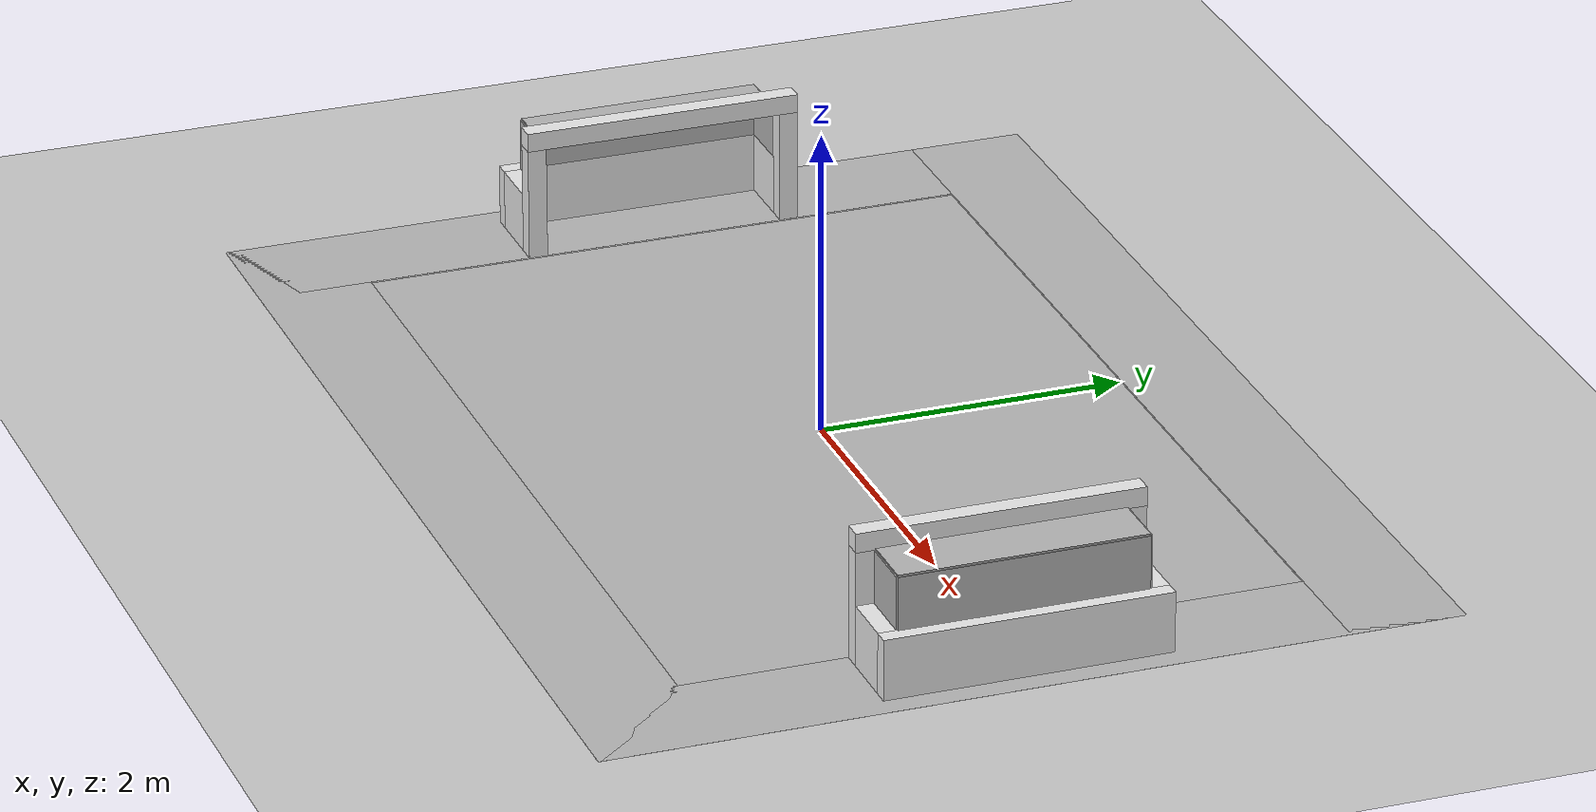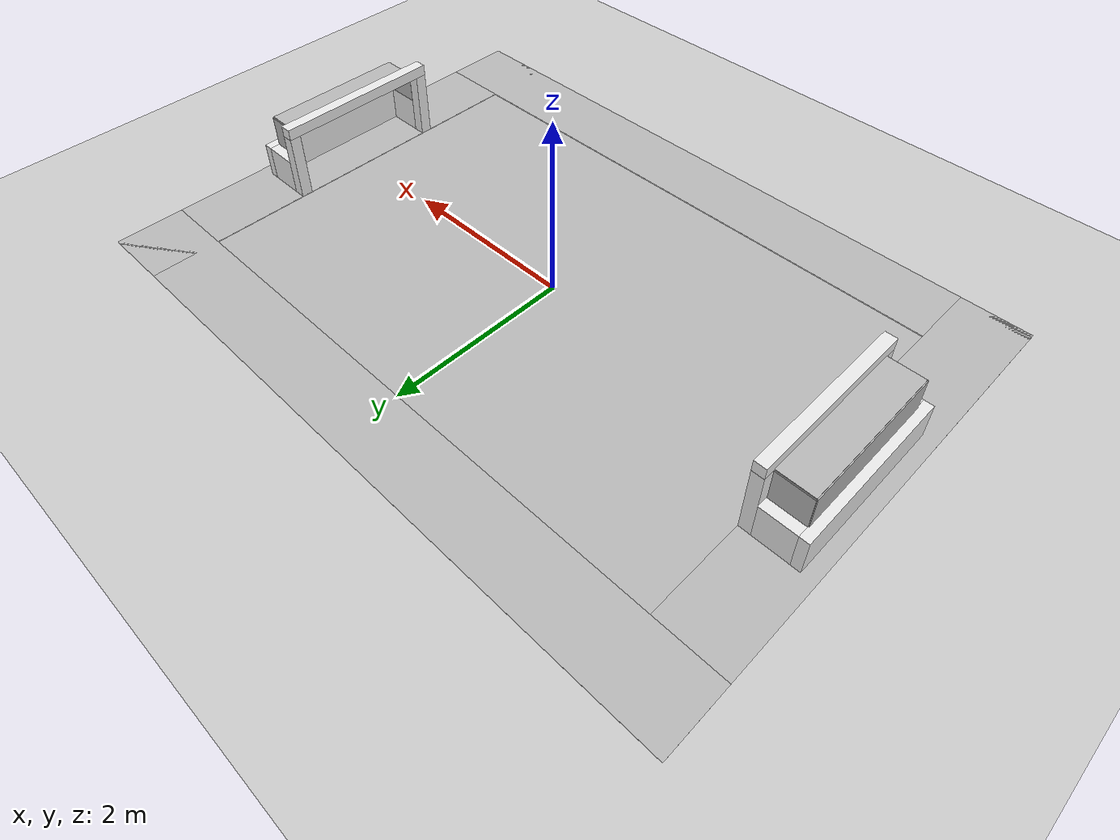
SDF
<?xml version="1.0" ?>
<sdf version='1.5'>
  <world name='RoboCup15MSL'>
<!-- scene -->
    <scene>
      <ambient>0.4 0.4 0.4 1</ambient>
      <background>0.7 0.7 0.7 1</background>
      <shadows>0</shadows>
    </scene>

<!-- spherical_coordinates -->
    <spherical_coordinates>
      <surface_model>EARTH_WGS84</surface_model>
      <latitude_deg>0</latitude_deg>
      <longitude_deg>0</longitude_deg>
      <elevation>0</elevation>
      <heading_deg>0</heading_deg>
    </spherical_coordinates>

<!-- lighting -->
 <light type="directional" name="sun">
    <cast_shadows>0</cast_shadows>

    <pose>0 0 10 0 0 0</pose>
    <diffuse>0.8 0.8 0.8 1</diffuse>
    <specular>0.2 0.2 0.2 1</specular>

    <attenuation>
      <range>1000</range>
      <constant>0.9</constant>
      <linear>0.01</linear>
      <quadratic>0.001</quadratic>
    </attenuation>

    <direction>-0.5 0.1 -0.9</direction>
  </light>

<!-- gui -->
    <gui fullscreen='0'>
      <camera name='user_camera'>
        <pose>0 -16 10 0 0.53 1.57</pose>
        <view_controller>orbit</view_controller>
      </camera>
    </gui>

<!-- physics -->
     <physics type='ode'>
      <max_step_size>0.015</max_step_size>
      <real_time_update_rate>67</real_time_update_rate>
      <gravity>0 0 -9.8</gravity>
    </physics>

<!-- The same as model://ground_plane -->
    <model name='ground_plane'>
      <static>true</static>
      <link name='link'>//
        <collision name='collision'>
          <geometry>
            <plane>
              <normal>0 0 1</normal>
              <size>100 100</size>
            </plane>
          </geometry>
          <surface>
            <friction>
              <ode>
                <mu>100</mu>
                <mu2>50</mu2>
              </ode>
            </friction>
            <contact>
              <ode/>
            </contact>
            <bounce/>
          </surface>
          <max_contacts>10</max_contacts>
        </collision>
        <visual name='visual'>
          <cast_shadows>0</cast_shadows>
          <geometry>
            <plane>
              <normal>0 0 1</normal>
              <size>100 100</size>
            </plane>
          </geometry>
          <material>
            <script>
              <uri>file://media/materials/scripts/gazebo.material</uri>
              <name>Gazebo/Grey</name>
            </script>
          </material>
        </visual>
        <velocity_decay>
          <linear>0</linear>
          <angular>0</angular>
        </velocity_decay>
        <self_collide>0</self_collide>
        <kinematic>0</kinematic>
        <gravity>1</gravity>
      </link>
    </model>

<!-- RoboCup 2015 MSL Field -->
    <include>
        <pose>0 0 0 0 0 0</pose>
        <uri>model://RoboCup15_MSL_Field</uri>
        <name>field</name>
        <static>true</static>
    </include>

<!-- RoboCup 2015 MSL Goal left -->
    <include>
        <pose>-3 0 0.01 0 0 -3.14 </pose>
        <uri>model://RoboCup15_MSL_Goal</uri>
        <name>left_goal</name>
        <static>true</static>
    </include>

<!-- RoboCup 2015 MSL Goal right -->
   <include>
        <pose>3 0 0.01 0 0 0 </pose>
        <uri>model://RoboCup15_MSL_Goal</uri>
        <name>right_goal</name>
        <static>true</static>
    </include>
  </world>
</sdf>

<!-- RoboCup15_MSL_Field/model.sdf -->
<sdf version="1.4">
  <model name="RoboCup15_MSL_Field">
    <static>true</static>

    <link name="chassis">
      <pose>0 0 0.01 0 0 0</pose>
      <collision name="collision">
        <geometry>
          <plane>
            <normal>0 0 1</normal>
            <size>6 4</size>
          </plane>
        </geometry>
        <surface>
          <friction>
            <ode>
              <mu>100</mu>
              <mu2>50</mu2>
            </ode>
          </friction>
        </surface>
      </collision>

      <visual name="carpet">
        <cast_shadows>false</cast_shadows>
        <geometry>
          <plane>
            <normal>0 0 1</normal>
            <size>6 4</size>
          </plane>
        </geometry>
        <material>
          <script>
            <uri>file://materials/scripts/</uri>
            <uri>file://materials/textures/</uri>
            <name>RoboCup/Carpet</name>
          </script>
        </material>
      </visual>

       <visual name="base1">
        <pose>0 2.375 0.01 0 0 0</pose>
        <cast_shadows>false</cast_shadows>
        <geometry>
          <plane>
            <normal>0 0 1</normal>
            <size>7.5 0.75</size>
          </plane>
        </geometry>
        <material>
          <script>
            <uri>file://materials/scripts/</uri>
            <uri>file://materials/textures/</uri>
            <name>RoboCup/FieldBorder</name>
          </script>
        </material>
      </visual>
      <visual name="base2">
        <pose>0 -2.375 0.01 0 0 0</pose>
        <cast_shadows>false</cast_shadows>
        <geometry>
          <plane>
            <normal>0 0 1</normal>
            <size>7.5 0.75</size>
          </plane>
        </geometry>
        <material>
          <script>
            <uri>file://materials/scripts/</uri>
            <uri>file://materials/textures/</uri>
            <name>RoboCup/FieldBorder</name>
          </script>
        </material>
      </visual>
      <visual name="base3">
        <pose>3.375 0 0.01 0 0 0</pose>
        <cast_shadows>false</cast_shadows>
        <geometry>
          <plane>
            <normal>0 0 1</normal>
            <size>0.75 5.5</size>
          </plane>
        </geometry>
        <material>
          <script>
            <uri>file://materials/scripts/</uri>
            <uri>file://materials/textures/</uri>
            <name>RoboCup/FieldBorder</name>
          </script>
        </material>
      </visual>
      <visual name="base4">
        <pose>-3.375 0 0.01 0 0 0</pose>
        <cast_shadows>false</cast_shadows>
        <geometry>
          <plane>
            <normal>0 0 1</normal>
            <size>0.75 5.5</size>
          </plane>
        </geometry>
        <material>
          <script>
            <uri>file://materials/scripts/</uri>
            <uri>file://materials/textures/</uri>
            <name>RoboCup/FieldBorder</name>
          </script>
        </material>
      </visual>
    </link>

  </model>
</sdf>

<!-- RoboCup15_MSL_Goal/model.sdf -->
<sdf version="1.4">
  <model name="RoboCup15_MSL_Goal">
    <static>true</static>

    <link name="left_post">
      <pose>0.0625 0.8625 0.385 0 0 0</pose>
      <collision name="collision">
        <geometry>
          <box><size>0.125 0.125 0.75</size></box>
        </geometry>
      </collision>
      <visual name="visual">
        <geometry>
          <box><size>0.125 0.125 0.75</size></box>
        </geometry>
        <material>
          <script>
            <uri>file://media/materials/scripts/gazebo.material</uri>
            <name>Gazebo/White</name>
          </script>
        </material>
      </visual>
    </link>

    <link name="right_post">
      <pose>0.0625 -0.8625 0.385 0 0 0</pose>
      <collision name="collision">
        <geometry>
          <box><size>0.125 0.125 0.75</size></box>
        </geometry>
      </collision>
      <visual name="visual">
        <geometry>
          <box><size>0.125 0.125 0.75</size></box>
        </geometry>
        <material>
          <script>
            <uri>file://media/materials/scripts/gazebo.material</uri>
            <name>Gazebo/White</name>
          </script>
        </material>
      </visual>
    </link>

    <link name="crossbar">
      <pose>0.0625 0 0.8225 0 0 0</pose>
      <collision name="collision">
        <geometry>
          <box><size>0.125 1.85 0.125</size></box>
        </geometry>
      </collision>
      <visual name="visual">
        <geometry>
          <box><size>0.125 1.85 0.125</size></box>
        </geometry>
        <material>
          <script>
            <uri>file://media/materials/scripts/gazebo.material</uri>
            <name>Gazebo/White</name>
          </script>
        </material>
      </visual>
    </link>

    <link name="left_support_horiz_lower">
      <pose>0.3125 0.8625 0.21 0 0 0</pose>
      <collision name="collision">
        <geometry>
          <box><size>0.375 0.125 0.4</size></box>
        </geometry>
      </collision>
      <visual name="visual">
        <geometry>
          <box><size>0.375 0.125 0.4</size></box>
        </geometry>
        <material>
          <script>
            <uri>file://media/materials/scripts/gazebo.material</uri>
            <name>Gazebo/White</name>
          </script>
        </material>
      </visual>
    </link>

    <link name="right_support_horiz_lower">
      <pose>0.3125 -0.8625 0.21 0 0 0</pose>
      <collision name="collision">
        <geometry>
          <box><size>0.375 0.125 0.4</size></box>
        </geometry>
      </collision>
      <visual name="visual">
        <geometry>
          <box><size>0.375 0.125 0.4</size></box>
        </geometry>
        <material>
          <script>
            <uri>file://media/materials/scripts/gazebo.material</uri>
            <name>Gazebo/White</name>
          </script>
        </material>
      </visual>
    </link>

        <link name="center_support_horiz_lower">
      <pose>0.55 0 0.21 0 0 0</pose>
      <collision name="collision">
        <geometry>
          <box><size>0.10 1.85 0.4</size></box>
        </geometry>
      </collision>
      <visual name="visual">
        <geometry>
          <box><size>0.10 1.85 0.4</size></box>
        </geometry>
        <material>
          <script>
            <uri>file://media/materials/scripts/gazebo.material</uri>
            <name>Gazebo/White</name>
          </script>
        </material>
      </visual>
    </link>

    <link name="center_net">
      <pose>0.505 0 0.585 0 0 0</pose>
      <collision name="collision">
        <geometry>
          <box><size>0.01 1.6 0.35</size></box>
        </geometry>
      </collision>
      <visual name="visual">
        <geometry>
          <box><size>0.01 1.6 0.35</size></box>
        </geometry>
        <material>
          <script>
            <uri>file://materials/scripts/</uri>
            <uri>file://materials/textures/</uri>
            <name>RoboCup/Net</name>
          </script>
        </material>
      </visual>
    </link>

    <link name="left_net">
      <pose>0.315 0.805 0.585 0 0 0</pose>
      <collision name="collision">
        <geometry>
          <box>
            <size>0.375 0.01 0.35</size>
          </box>
        </geometry>
      </collision>
      <visual name="visual">
        <geometry>
          <box>
            <size>0.375 0.01 0.35</size>
          </box>
        </geometry>
        <material>
          <script>
            <uri>file://materials/scripts/</uri>
            <uri>file://materials/textures/</uri>
            <name>RoboCup/Net</name>
          </script>
        </material>
      </visual>
    </link>

    <link name="right_net">
      <pose>0.315 -0.805 0.585 0 0 0</pose>
      <collision name="collision">
        <geometry>
          <box>
            <size>0.375 0.01 0.35</size>
          </box>
        </geometry>
      </collision>
      <visual name="visual">
        <geometry>
          <box>
            <size>0.375 0.01 0.35</size>
          </box>
        </geometry>
        <material>
          <script>
            <uri>file://materials/scripts/</uri>
            <uri>file://materials/textures/</uri>
            <name>RoboCup/Net</name>
          </script>
        </material>
      </visual>
    </link>

    <link name='upper_net'>
      <pose>0.3125 0 0.765 0 0 0</pose>
      <collision name='collision'>
        <geometry>
          <box><size>0.375 1.6 0.01</size></box>
        </geometry>
        <max_contacts>10</max_contacts>
      </collision>
      <visual name='visual'>
        <geometry>
          <box><size>0.375 1.6 0.01</size></box>
        </geometry>
        <material>
          <script>
            <uri>file://materials/scripts/</uri>
            <uri>file://materials/textures/</uri>
            <name>RoboCup/Net</name>
          </script>
        </material>
      </visual>
    </link>

  </model>
</sdf>
